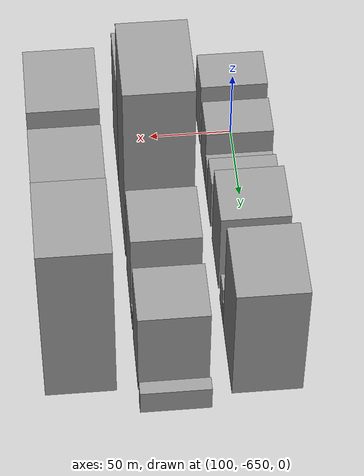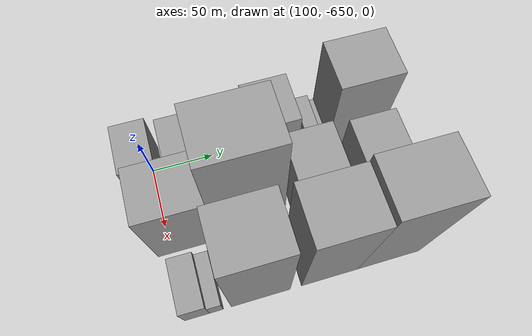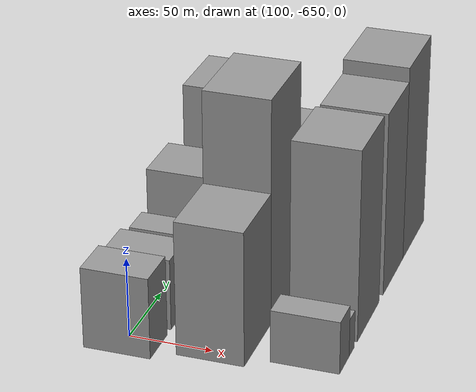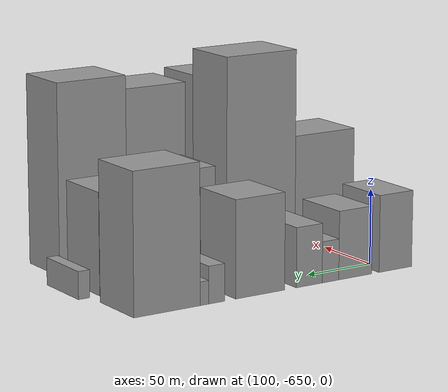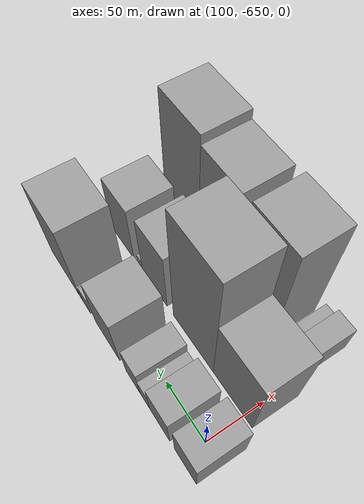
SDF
<sdf version="1.6">
 <world name="default">
  <model name="building_8">
   <static>1</static>
   <pose>100.0000 -655.4162 0 0.000000 0.000000 0.000000</pose>
   <link name="link">
    <pose>0 0 25.50 0 0 0</pose>
    <collision name="collision"><geometry><box><size>40.0000 26.6878 51.0000</size></box></geometry></collision>
    <visual name="visual">
     <cast_shadows>0</cast_shadows>
     <geometry><box><size>40.0000 26.6878 51.0000</size></box></geometry>
     <material>
      <script>
       <uri>model://grey_wall/materials/scripts</uri>
       <uri>model://grey_wall/materials/textures</uri>
       <name>vrc/grey_wall</name>
      </script>
     </material>
    </visual>
   </link>
  </model>
  <model name="building_9">
   <static>1</static>
   <pose>100.0000 -622.9957 0 0.000000 0.000000 0.000000</pose>
   <link name="link">
    <pose>0 0 22.50 0 0 0</pose>
    <collision name="collision"><geometry><box><size>40.0000 26.1534 45.0000</size></box></geometry></collision>
    <visual name="visual">
     <cast_shadows>0</cast_shadows>
     <geometry><box><size>40.0000 26.1534 45.0000</size></box></geometry>
     <material>
      <script>
       <uri>model://grey_wall/materials/scripts</uri>
       <uri>model://grey_wall/materials/textures</uri>
       <name>vrc/grey_wall</name>
      </script>
     </material>
    </visual>
   </link>
  </model>
  <model name="building_10">
   <static>1</static>
   <pose>100.0000 -603.3954 0 0.000000 0.000000 0.000000</pose>
   <link name="link">
    <pose>0 0 13.50 0 0 0</pose>
    <collision name="collision"><geometry><box><size>40.0000 13.0470 27.0000</size></box></geometry></collision>
    <visual name="visual">
     <cast_shadows>0</cast_shadows>
     <geometry><box><size>40.0000 13.0470 27.0000</size></box></geometry>
     <material>
      <script>
       <uri>model://grey_wall/materials/scripts</uri>
       <uri>model://grey_wall/materials/textures</uri>
       <name>vrc/grey_wall</name>
      </script>
     </material>
    </visual>
   </link>
  </model>
  <model name="building_11">
   <static>1</static>
   <pose>100.0000 -586.8713 0 0.000000 0.000000 0.000000</pose>
   <link name="link">
    <pose>0 0 19.50 0 0 0</pose>
    <collision name="collision"><geometry><box><size>40.0000 20.0013 39.0000</size></box></geometry></collision>
    <visual name="visual">
     <cast_shadows>0</cast_shadows>
     <geometry><box><size>40.0000 20.0013 39.0000</size></box></geometry>
     <material>
      <script>
       <uri>model://grey_wall/materials/scripts</uri>
       <uri>model://grey_wall/materials/textures</uri>
       <name>vrc/grey_wall</name>
      </script>
     </material>
    </visual>
   </link>
  </model>
  <model name="building_12">
   <static>1</static>
   <pose>100.0000 -549.4796 0 0.000000 0.000000 0.000000</pose>
   <link name="link">
    <pose>0 0 31.50 0 0 0</pose>
    <collision name="collision"><geometry><box><size>40.0000 36.7822 63.0000</size></box></geometry></collision>
    <visual name="visual">
     <cast_shadows>0</cast_shadows>
     <geometry><box><size>40.0000 36.7822 63.0000</size></box></geometry>
     <material>
      <script>
       <uri>model://grey_wall/materials/scripts</uri>
       <uri>model://grey_wall/materials/textures</uri>
       <name>vrc/grey_wall</name>
      </script>
     </material>
    </visual>
   </link>
  </model>
  <model name="building_13">
   <static>1</static>
   <pose>100.0000 -517.1850 0 0.000000 0.000000 0.000000</pose>
   <link name="link">
    <pose>0 0 12.00 0 0 0</pose>
    <collision name="collision"><geometry><box><size>40.0000 11.8070 24.0000</size></box></geometry></collision>
    <visual name="visual">
     <cast_shadows>0</cast_shadows>
     <geometry><box><size>40.0000 11.8070 24.0000</size></box></geometry>
     <material>
      <script>
       <uri>model://grey_wall/materials/scripts</uri>
       <uri>model://grey_wall/materials/textures</uri>
       <name>vrc/grey_wall</name>
      </script>
     </material>
    </visual>
   </link>
  </model>
  <model name="building_14">
   <static>1</static>
   <pose>100.0000 -508.1514 0 0.000000 0.000000 0.000000</pose>
   <link name="link">
    <pose>0 0 7.50 0 0 0</pose>
    <collision name="collision"><geometry><box><size>40.0000 6.2602 15.0000</size></box></geometry></collision>
    <visual name="visual">
     <cast_shadows>0</cast_shadows>
     <geometry><box><size>40.0000 6.2602 15.0000</size></box></geometry>
     <material>
      <script>
       <uri>model://grey_wall/materials/scripts</uri>
       <uri>model://grey_wall/materials/textures</uri>
       <name>vrc/grey_wall</name>
      </script>
     </material>
    </visual>
   </link>
  </model>
  <model name="building_15">
   <static>1</static>
   <pose>100.0000 -481.4193 0 0.000000 0.000000 0.000000</pose>
   <link name="link">
    <pose>0 0 45.00 0 0 0</pose>
    <collision name="collision"><geometry><box><size>40.0000 47.2039 90.0000</size></box></geometry></collision>
    <visual name="visual">
     <cast_shadows>0</cast_shadows>
     <geometry><box><size>40.0000 47.2039 90.0000</size></box></geometry>
     <material>
      <script>
       <uri>model://grey_wall/materials/scripts</uri>
       <uri>model://grey_wall/materials/textures</uri>
       <name>vrc/grey_wall</name>
      </script>
     </material>
    </visual>
   </link>
  </model>
  <model name="building_60">
   <static>1</static>
   <pose>152.0000 -636.1807 0 0.000000 0.000000 0.000000</pose>
   <link name="link">
    <pose>0 0 42.00 0 0 0</pose>
    <collision name="collision"><geometry><box><size>40.0000 47.3613 84.0000</size></box></geometry></collision>
    <visual name="visual">
     <cast_shadows>0</cast_shadows>
     <geometry><box><size>40.0000 47.3613 84.0000</size></box></geometry>
     <material>
      <script>
       <uri>model://grey_wall/materials/scripts</uri>
       <uri>model://grey_wall/materials/textures</uri>
       <name>vrc/grey_wall</name>
      </script>
     </material>
    </visual>
   </link>
  </model>
  <model name="building_61">
   <static>1</static>
   <pose>152.0000 -585.7298 0 0.000000 0.000000 0.000000</pose>
   <link name="link">
    <pose>0 0 70.50 0 0 0</pose>
    <collision name="collision"><geometry><box><size>40.0000 53.5406 141.0000</size></box></geometry></collision>
    <visual name="visual">
     <cast_shadows>0</cast_shadows>
     <geometry><box><size>40.0000 53.5406 141.0000</size></box></geometry>
     <material>
      <script>
       <uri>model://grey_wall/materials/scripts</uri>
       <uri>model://grey_wall/materials/textures</uri>
       <name>vrc/grey_wall</name>
      </script>
     </material>
    </visual>
   </link>
  </model>
  <model name="building_62">
   <static>1</static>
   <pose>152.0000 -531.5741 0 0.000000 0.000000 0.000000</pose>
   <link name="link">
    <pose>0 0 36.00 0 0 0</pose>
    <collision name="collision"><geometry><box><size>40.0000 36.7707 72.0000</size></box></geometry></collision>
    <visual name="visual">
     <cast_shadows>0</cast_shadows>
     <geometry><box><size>40.0000 36.7707 72.0000</size></box></geometry>
     <material>
      <script>
       <uri>model://grey_wall/materials/scripts</uri>
       <uri>model://grey_wall/materials/textures</uri>
       <name>vrc/grey_wall</name>
      </script>
     </material>
    </visual>
   </link>
  </model>
  <model name="building_63">
   <static>1</static>
   <pose>152.0000 -509.5908 0 0.000000 0.000000 0.000000</pose>
   <link name="link">
    <pose>0 0 7.50 0 0 0</pose>
    <collision name="collision"><geometry><box><size>40.0000 7.1959 15.0000</size></box></geometry></collision>
    <visual name="visual">
     <cast_shadows>0</cast_shadows>
     <geometry><box><size>40.0000 7.1959 15.0000</size></box></geometry>
     <material>
      <script>
       <uri>model://grey_wall/materials/scripts</uri>
       <uri>model://grey_wall/materials/textures</uri>
       <name>vrc/grey_wall</name>
      </script>
     </material>
    </visual>
   </link>
  </model>
  <model name="building_64">
   <static>1</static>
   <pose>152.0000 -482.2499 0 0.000000 0.000000 0.000000</pose>
   <link name="link">
    <pose>0 0 33.00 0 0 0</pose>
    <collision name="collision"><geometry><box><size>40.0000 35.4860 66.0000</size></box></geometry></collision>
    <visual name="visual">
     <cast_shadows>0</cast_shadows>
     <geometry><box><size>40.0000 35.4860 66.0000</size></box></geometry>
     <material>
      <script>
       <uri>model://grey_wall/materials/scripts</uri>
       <uri>model://grey_wall/materials/textures</uri>
       <name>vrc/grey_wall</name>
      </script>
     </material>
    </visual>
   </link>
  </model>
  <model name="building_65">
   <static>1</static>
   <pose>152.0000 -453.4566 0 0.000000 0.000000 0.000000</pose>
   <link name="link">
    <pose>0 0 9.00 0 0 0</pose>
    <collision name="collision"><geometry><box><size>40.0000 8.1005 18.0000</size></box></geometry></collision>
    <visual name="visual">
     <cast_shadows>0</cast_shadows>
     <geometry><box><size>40.0000 8.1005 18.0000</size></box></geometry>
     <material>
      <script>
       <uri>model://grey_wall/materials/scripts</uri>
       <uri>model://grey_wall/materials/textures</uri>
       <name>vrc/grey_wall</name>
      </script>
     </material>
    </visual>
   </link>
  </model>
  <model name="building_109">
   <static>1</static>
   <pose>204.0000 -641.1281 0 0.000000 0.000000 0.000000</pose>
   <link name="link">
    <pose>0 0 16.50 0 0 0</pose>
    <collision name="collision"><geometry><box><size>40.0000 18.6675 33.0000</size></box></geometry></collision>
    <visual name="visual">
     <cast_shadows>0</cast_shadows>
     <geometry><box><size>40.0000 18.6675 33.0000</size></box></geometry>
     <material>
      <script>
       <uri>model://grey_wall/materials/scripts</uri>
       <uri>model://grey_wall/materials/textures</uri>
       <name>vrc/grey_wall</name>
      </script>
     </material>
    </visual>
   </link>
  </model>
  <model name="building_110">
   <static>1</static>
   <pose>204.0000 -626.5386 0 0.000000 0.000000 0.000000</pose>
   <link name="link">
    <pose>0 0 12.00 0 0 0</pose>
    <collision name="collision"><geometry><box><size>40.0000 10.5116 24.0000</size></box></geometry></collision>
    <visual name="visual">
     <cast_shadows>0</cast_shadows>
     <geometry><box><size>40.0000 10.5116 24.0000</size></box></geometry>
     <material>
      <script>
       <uri>model://grey_wall/materials/scripts</uri>
       <uri>model://grey_wall/materials/textures</uri>
       <name>vrc/grey_wall</name>
      </script>
     </material>
    </visual>
   </link>
  </model>
  <model name="building_111">
   <static>1</static>
   <pose>204.0000 -592.5003 0 0.000000 0.000000 0.000000</pose>
   <link name="link">
    <pose>0 0 60.00 0 0 0</pose>
    <collision name="collision"><geometry><box><size>40.0000 45.5648 120.0000</size></box></geometry></collision>
    <visual name="visual">
     <cast_shadows>0</cast_shadows>
     <geometry><box><size>40.0000 45.5648 120.0000</size></box></geometry>
     <material>
      <script>
       <uri>model://grey_wall/materials/scripts</uri>
       <uri>model://grey_wall/materials/textures</uri>
       <name>vrc/grey_wall</name>
      </script>
     </material>
    </visual>
   </link>
  </model>
  <model name="building_112">
   <static>1</static>
   <pose>204.0000 -538.1352 0 0.000000 0.000000 0.000000</pose>
   <link name="link">
    <pose>0 0 58.50 0 0 0</pose>
    <collision name="collision"><geometry><box><size>40.0000 45.1655 117.0000</size></box></geometry></collision>
    <visual name="visual">
     <cast_shadows>0</cast_shadows>
     <geometry><box><size>40.0000 45.1655 117.0000</size></box></geometry>
     <material>
      <script>
       <uri>model://grey_wall/materials/scripts</uri>
       <uri>model://grey_wall/materials/textures</uri>
       <name>vrc/grey_wall</name>
      </script>
     </material>
    </visual>
   </link>
  </model>
  <model name="building_113">
   <static>1</static>
   <pose>204.0000 -490.4051 0 0.000000 0.000000 0.000000</pose>
   <link name="link">
    <pose>0 0 63.00 0 0 0</pose>
    <collision name="collision"><geometry><box><size>40.0000 50.2947 126.0000</size></box></geometry></collision>
    <visual name="visual">
     <cast_shadows>0</cast_shadows>
     <geometry><box><size>40.0000 50.2947 126.0000</size></box></geometry>
     <material>
      <script>
       <uri>model://grey_wall/materials/scripts</uri>
       <uri>model://grey_wall/materials/textures</uri>
       <name>vrc/grey_wall</name>
      </script>
     </material>
    </visual>
   </link>
  </model>
 </world>
</sdf>
